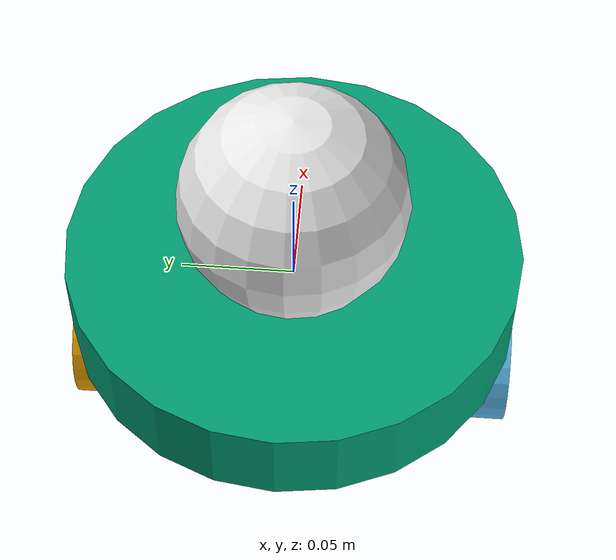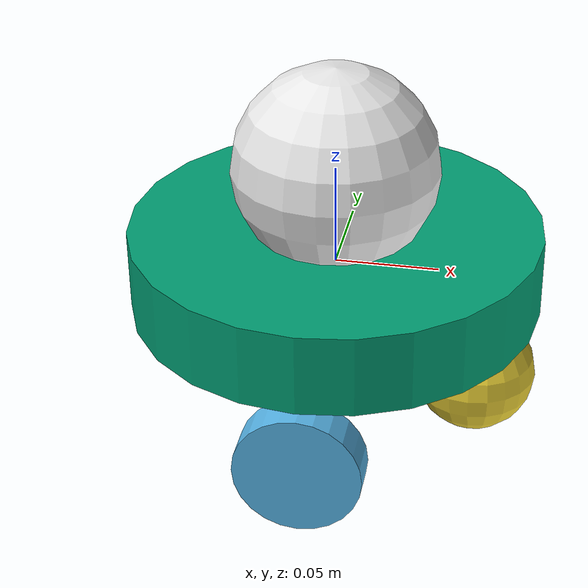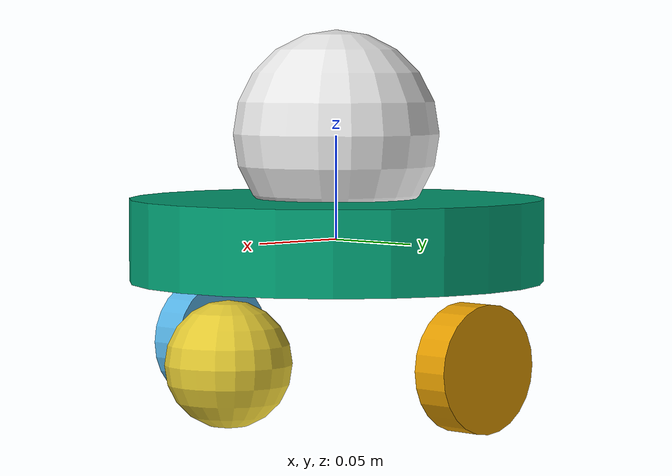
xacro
<robot name="vacuumcleaner" xmlns:xacro="http://wiki.ros.org/xacro">
  <!-- Radius of center disk (meters) -->
  <xacro:arg name="body_radius" default="0.1"/>

  <!-- Height of center disk (meters)-->
  <xacro:property name="body_height" value="0.04"/>
  <xacro:property name="wheel_height" value="0.018" />
  <xacro:macro name="sphere_inertia" params="m r">
    <inertial>
      <mass value="${m}"/>
      <inertia ixx="${2.0*m*(r*r)/5.0}" ixy="0.0" ixz="0.0" iyy="${2.0*m*(r*r)/5.0}" iyz="0.0" izz="${2.0*m*(r*r)/5.0}"/>
    </inertial>
  </xacro:macro>
  <xacro:macro name="disk_inertia" params="mass radius height orientation">
    <inertial>
      <debug mass="${mass}" radius="${radius}" height="${height}" />
      <origin rpy="${orientation}" xyz="0 0 0" />
      <mass value="${mass}" />
      <inertia
        ixx="${1/12 * mass * (3* radius * radius + height * height)}"
        ixy="0"
        ixz="0"
        iyy="${1/12 * mass * (3* radius * radius + height * height)}"
        iyz="0"
        izz="${1/2 * mass * radius * radius}" />
    </inertial>
  </xacro:macro>

  <xacro:macro name="wheel" params="suffix radius length xoffset yoffset zoffset">
     <link name="link_${suffix}_wheel">
     <xacro:disk_inertia mass="0.250" radius="${radius}" height="${length}" orientation="0 1.5757 1.5757"/>
     <collision name="link_${suffix}_wheel_collision">
        <origin rpy="0 1.5757 1.5757" xyz="0 0 0" />
        <geometry>
          <cylinder length="${length}" radius="${radius}" />
        </geometry>
     </collision>
      <visual name="link_${suffix}_wheel_visual">
        <origin rpy="0 1.5757 1.5757" xyz="0 0 0" />
        <geometry>
          <cylinder length="${length}" radius="${radius}" />
        </geometry>
      </visual>
    </link>
     <gazebo reference="link_${suffix}_wheel">
       <kp>1000000.0</kp>
       <kd>100.0</kd>
       <mu1>1.0</mu1>
       <mu2>1.0</mu2>
       <fdir1>1 0 0</fdir1>
       <maxVel>1.0</maxVel>
       <minDepth>0.00</minDepth>
    </gazebo>
   <joint name="joint_${suffix}_wheel" type="continuous">
       <origin rpy="0 0 0" xyz="${xoffset} ${yoffset} ${zoffset}" />
       <child link="link_${suffix}_wheel" />
       <parent link="base_footprint" />
       <axis rpy="0 0 0" xyz="0 1 0" />
    </joint>
  </xacro:macro>

  <xacro:wheel suffix="left" radius="0.030" length="${wheel_height}" xoffset="0" yoffset="${$(arg body_radius)-wheel_height/2}" zoffset="-0.055"/>
  <xacro:wheel suffix="right" radius="0.030" length="${wheel_height}" xoffset="0" yoffset="${-$(arg body_radius)+wheel_height/2}" zoffset="-0.055"/>
  <link name="base_footprint">
    <xacro:disk_inertia mass="0.850" radius="$(arg body_radius)" height="${body_height}" orientation="0 0 0" />
    <visual>
      <geometry>
	      <cylinder length="${body_height}" radius="$(arg body_radius)" />
      </geometry>
    </visual>
    <collision name="base_footprint_collision">
      <geometry>
	      <cylinder length="${body_height}" radius="$(arg body_radius)" />
      </geometry>
    </collision>
  </link>
  <gazebo reference="base_footprint">
    <sensor name='bumper_contact' type='contact'>
      <plugin name="gazebo_ros_bumper_controller" filename="libgazebo_ros_bumper.so">
        <bumperTopicName>bumper_vals</bumperTopicName>
        <frameName>map</frameName>
        <alwaysOn>true</alwaysOn>
        <updateRate>4.0</updateRate>
      </plugin>
      <always_on>true</always_on>
      <update_rate>4.0</update_rate>
      <contact>
        <collision>base_footprint_collision_collision</collision>
      </contact>
    </sensor>
  </gazebo>

   <link name="caster_wheel">
    <visual>
      <origin xyz="0 0 0" rpy="0 0 0"/>
      <geometry>
        <sphere radius="0.030"/>
      </geometry>
    </visual>
    <collision>
      <origin xyz="0 0 0" rpy="0 0 0"/>
      <geometry>
        <sphere radius="0.030"/>
      </geometry>
    </collision>
    <xacro:sphere_inertia m="1" r="0.033"/>
  </link>
  <gazebo reference="caster_wheel">
       <kp>1000000.0</kp>
       <kd>100.0</kd>
       <mu1>0</mu1>
       <mu2>0</mu2>
       <fdir1>1 0 0</fdir1>
       <maxVel>1.0</maxVel>
       <minDepth>0.00</minDepth>
       <material>Gazebo/ZincYellow</material>
    </gazebo>

  <joint name="caster_wheel_joint" type="fixed">
    <axis xyz="0 1 0" rpy="0 0 0" />
    <parent link="base_footprint"/>
    <child link="caster_wheel"/>
    <origin rpy="0 0 0" xyz="${$(arg body_radius)-0.03} 0 -0.055" />
  </joint>
  <gazebo>
   <plugin name="differential_drive" filename="libgazebo_ros_diff_drive.so">
      <rosDebugLevel>na</rosDebugLevel>
      <updateRate>30</updateRate>
      <leftJoint>joint_left_wheel</leftJoint>
      <rightJoint>joint_right_wheel</rightJoint>
      <wheelSeparation>${2*$(arg body_radius)}</wheelSeparation>
      <wheelDiameter>0.066</wheelDiameter>
      <wheelTorque>5</wheelTorque>
      <commandTopic>/cmd_vel</commandTopic>
      <publishOdom>true</publishOdom>
      <publishOdomTF>true</publishOdomTF>
      <publishWheelTF>false</publishWheelTF>
      <odometryTopic>/odom</odometryTopic>
      <odometryFrame>/odom</odometryFrame>
      <robotBaseFrame>/base_footprint</robotBaseFrame>
      <wheelAcceleration>1.0</wheelAcceleration>
    </plugin>
  </gazebo>
  <gazebo>
    <plugin name="joint_state_publisher" filename="libgazebo_ros_joint_state_publisher.so">
      <updateRate>30</updateRate>
      <jointName>joint_left_wheel, joint_right_wheel</jointName>
    </plugin>
  </gazebo>
  <link name="base_scan">
    <visual>
      <geometry>
        <sphere radius="0.05" />
      </geometry>
      <material name="white" />
    </visual>
    <collision>
      <geometry>
        <sphere radius="0.05" />
      </geometry>
    </collision>

    <inertial>
      <mass value="0.01" />
      <inertia  ixx="0.001" ixy="0.0"  ixz="0.0"
              iyy="0.001"  iyz="0.0"
              izz="0.001" />
    </inertial>

  </link>
  <joint name="base_scan_joint" type="fixed">
    <child link="base_scan" />
    <parent link="base_footprint" />
    <origin xyz="0 0 0.051" />
  </joint>

  <gazebo reference="base_scan">
    <sensor name="raycaster" type="ray">
      <always_on>true</always_on>
      <visualize>true</visualize>
      <update_rate>5</update_rate>
      <ray>
        <scan>
          <horizontal>
            <samples>360</samples>
            <resolution>1.000000</resolution>
            <min_angle>0.000000</min_angle>
            <max_angle>6.280000</max_angle>
          </horizontal>
        </scan>
        <range>
          <min>0.120000</min>
          <max>3.5</max>
          <resolution>0.015000</resolution>
        </range>
        <noise>
          <type>gaussian</type>
          <mean>0.0</mean>
          <stddev>0.01</stddev>
        </noise>
      </ray>
      <plugin name="laserscan" filename="libgazebo_ros_laser.so">
	    <topicName>scan</topicName>
	    <frameName>base_scan</frameName>
      </plugin>
   </sensor>
  </gazebo>
</robot>
